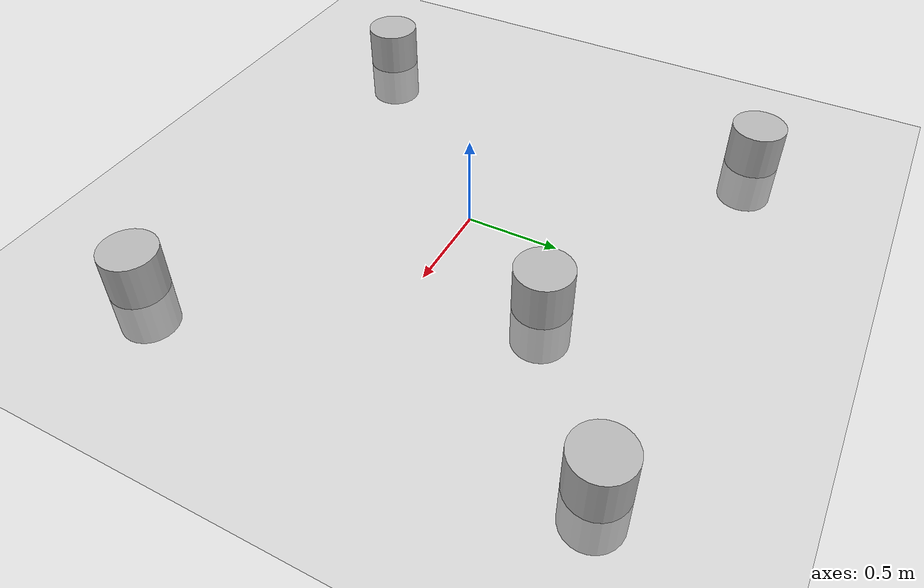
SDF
<?xml version="1.0"?>
<sdf version="1.6">
  <world name="default">
    <include>
      <uri>model://ground_plane</uri>
    </include>
    <include>
      <uri>model://sun</uri>
    </include>
    <scene>
      <shadows>false</shadows>
    </scene>

    <physics type="ode">
      <real_time_update_rate>1000.0</real_time_update_rate>
      <max_step_size>0.001</max_step_size>
      <real_time_factor>1</real_time_factor>
    </physics>

    <!-- Layout 3: Sparse obstacles in corners -->
    <model name="obstacle_1">
      <pose>1.2 1.2 0 0 0 0</pose>
      <static>true</static>
      <link name="link">
        <collision name="collision">
          <geometry>
            <cylinder>
              <radius>0.15</radius>
              <length>0.5</length>
            </cylinder>
          </geometry>
        </collision>
        <visual name="visual">
          <geometry>
            <cylinder>
              <radius>0.15</radius>
              <length>0.5</length>
            </cylinder>
          </geometry>
        </visual>
      </link>
    </model>

    <model name="obstacle_2">
      <pose>-1.2 1.2 0 0 0 0</pose>
      <static>true</static>
      <link name="link">
        <collision name="collision">
          <geometry>
            <cylinder>
              <radius>0.15</radius>
              <length>0.5</length>
            </cylinder>
          </geometry>
        </collision>
        <visual name="visual">
          <geometry>
            <cylinder>
              <radius>0.15</radius>
              <length>0.5</length>
            </cylinder>
          </geometry>
        </visual>
      </link>
    </model>

    <model name="obstacle_3">
      <pose>1.2 -1.2 0 0 0 0</pose>
      <static>true</static>
      <link name="link">
        <collision name="collision">
          <geometry>
            <cylinder>
              <radius>0.15</radius>
              <length>0.5</length>
            </cylinder>
          </geometry>
        </collision>
        <visual name="visual">
          <geometry>
            <cylinder>
              <radius>0.15</radius>
              <length>0.5</length>
            </cylinder>
          </geometry>
        </visual>
      </link>
    </model>

    <model name="obstacle_4">
      <pose>-1.2 -1.2 0 0 0 0</pose>
      <static>true</static>
      <link name="link">
        <collision name="collision">
          <geometry>
            <cylinder>
              <radius>0.15</radius>
              <length>0.5</length>
            </cylinder>
          </geometry>
        </collision>
        <visual name="visual">
          <geometry>
            <cylinder>
              <radius>0.15</radius>
              <length>0.5</length>
            </cylinder>
          </geometry>
        </visual>
      </link>
    </model>

    <model name="obstacle_5">
      <pose>0.4 0.6 0 0 0 0</pose>
      <static>true</static>
      <link name="link">
        <collision name="collision">
          <geometry>
            <cylinder>
              <radius>0.15</radius>
              <length>0.5</length>
            </cylinder>
          </geometry>
        </collision>
        <visual name="visual">
          <geometry>
            <cylinder>
              <radius>0.15</radius>
              <length>0.5</length>
            </cylinder>
          </geometry>
        </visual>
      </link>
    </model>

  </world>
</sdf>
